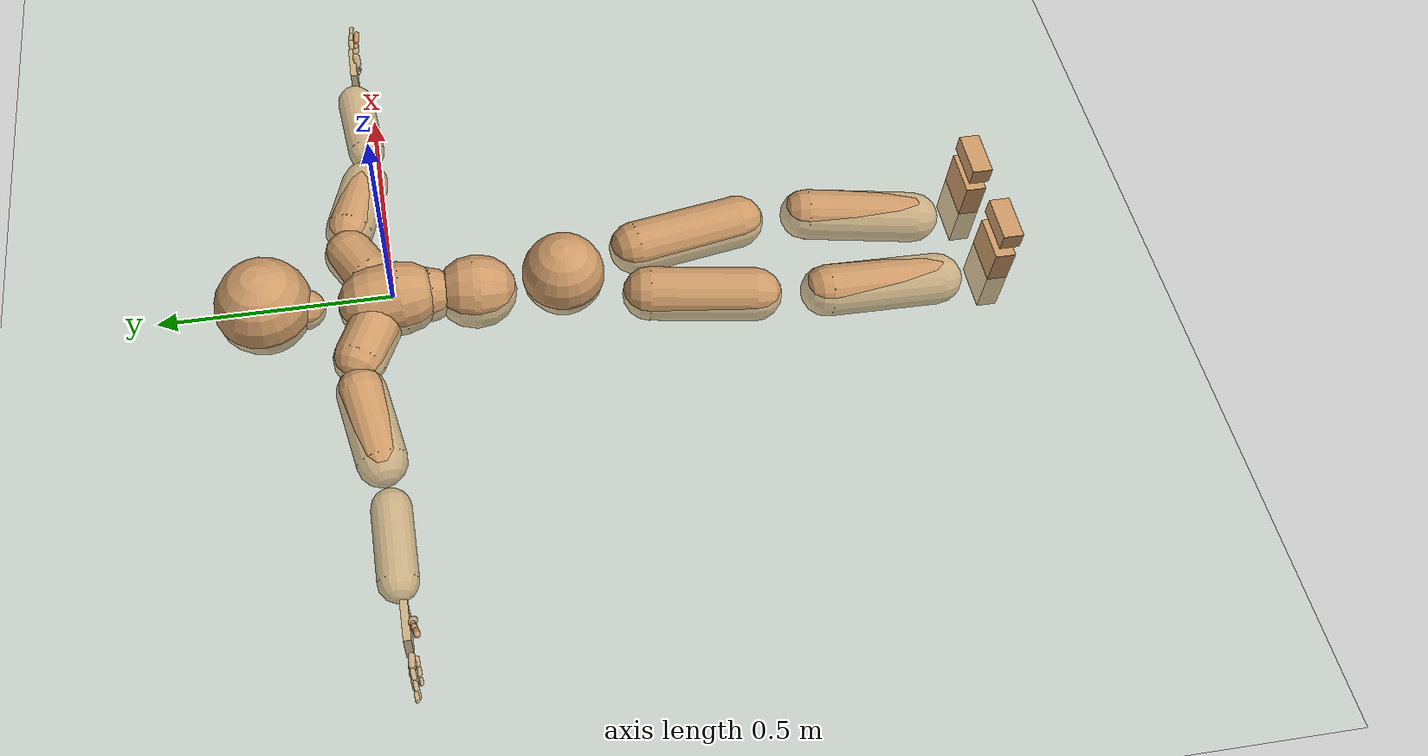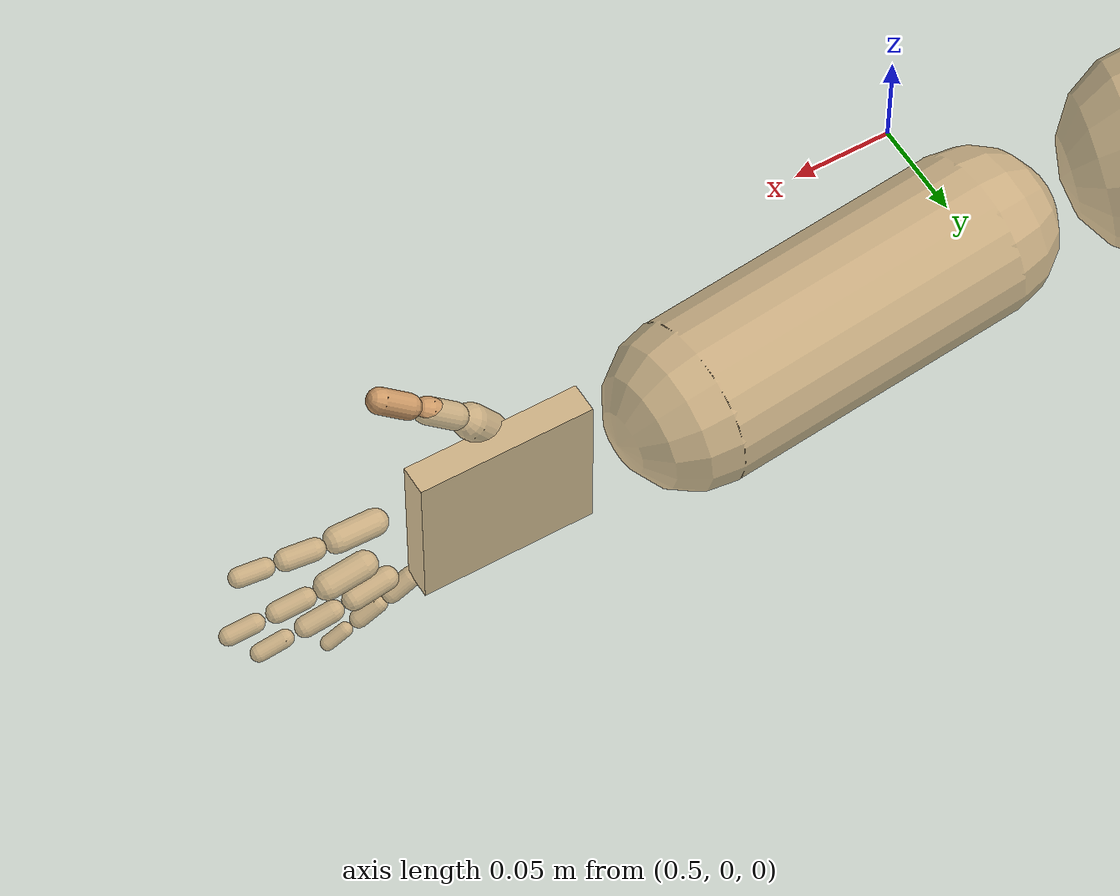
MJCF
<?xml version='1.0' encoding='utf-8'?>
<mujoco model="smplx_mapped_s1">
  <compiler coordinate="local" />
  <default>
    <joint damping="0.0" armature="0.01" stiffness="0.0" limited="true" />
    <geom conaffinity="1" condim="3" contype="7" margin="0.001" rgba="0.8 0.6 .4 1" />
  </default>
  <asset>
    <texture type="skybox" builtin="gradient" rgb1=".4 .5 .6" rgb2="0 0 0" width="100" height="100" />
    <texture builtin="flat" height="1278" mark="cross" markrgb="1 1 1" name="texgeom" random="0.01" rgb1="0.8 0.6 0.4" rgb2="0.8 0.6 0.4" type="cube" width="127" />
    <texture builtin="checker" height="100" name="texplane" rgb1="0 0 0" rgb2="0.8 0.8 0.8" type="2d" width="100" />
    <material name="MatPlane" reflectance="0.5" shininess="1" specular="1" texrepeat="60 60" texture="texplane" />
    <material name="geom" texture="texgeom" texuniform="true" />
  </asset>
  <worldbody>
    <light cutoff="100" diffuse="1 1 1" dir="-0 0 -1.3" directional="true" exponent="1" pos="0 0 1.3" specular=".1 .1 .1" />
    <geom conaffinity="1" condim="3" name="floor" pos="0 0 0" rgba="0.8 0.9 0.8 1" size="100 100 .2" type="plane" material="MatPlane" />
    <body name="Pelvis" pos="0.0009 -0.3704 0.0066">
      <freejoint name="Pelvis" />
      <geom type="sphere" contype="1" conaffinity="1" density="4629.6296296296305" size="0.09" pos="0.0000 0.0000 0.0000" name="Pelvis" />
      <body name="L_Hip" pos="0.0522 -0.0938 -0.0270">
        <joint name="L_Hip_x" type="hinge" pos="0 0 0" axis="1 0 0" stiffness="800" damping="80" armature="0.02" range="-150.00 150.00" />
        <joint name="L_Hip_y" type="hinge" pos="0 0 0" axis="0 1 0" stiffness="800" damping="80" armature="0.02" range="-150.00 150.00" />
        <joint name="L_Hip_z" type="hinge" pos="0 0 0" axis="0 0 1" stiffness="800" damping="80" armature="0.02" range="-150.00 150.00" />
        <geom type="capsule" contype="1" conaffinity="1" density="2040.816327" fromto="0.0134 -0.0789 -0.0012 0.0535 -0.3156 -0.0047" size="0.059" />
        <body name="L_Knee" pos="0.0669 -0.3944 -0.0058">
          <joint name="L_Knee_x" type="hinge" pos="0 0 0" axis="1 0 0" stiffness="800" damping="80" armature="0.02" range="-150.00 150.00" />
          <joint name="L_Knee_y" type="hinge" pos="0 0 0" axis="0 1 0" stiffness="800" damping="80" armature="0.02" range="-150.00 150.00" />
          <joint name="L_Knee_z" type="hinge" pos="0 0 0" axis="0 0 1" stiffness="800" damping="80" armature="0.02" range="-150.00 150.00" />
          <geom type="capsule" contype="1" conaffinity="1" density="1234.567901" fromto="-0.0089 -0.0820 -0.0079 -0.0356 -0.3279 -0.0317" size="0.0564" />
          <body name="L_Ankle" pos="-0.0446 -0.4099 -0.0396">
            <joint name="L_Ankle_x" type="hinge" pos="0 0 0" axis="1 0 0" stiffness="800" damping="80" armature="0.02" range="-150.00 150.00" />
            <joint name="L_Ankle_y" type="hinge" pos="0 0 0" axis="0 1 0" stiffness="800" damping="80" armature="0.02" range="-150.00 150.00" />
            <joint name="L_Ankle_z" type="hinge" pos="0 0 0" axis="0 0 1" stiffness="800" damping="80" armature="0.02" range="-150.00 150.00" />
            <geom type="box" contype="1" conaffinity="1" density="1000" pos="0.0115 -0.0234 0.0566" size="0.0502 0.0216 0.0909" quat="1.0000 0.0000 0.0000 0.0000" />
            <body name="L_Toe" pos="0 0 0.1326">
              <joint name="L_Toe_x" type="hinge" pos="0 0 0" axis="1 0 0" stiffness="500" damping="50" armature="0.02" range="-150.00 150.00" />
              <joint name="L_Toe_y" type="hinge" pos="0 0 0" axis="0 1 0" stiffness="500" damping="50" armature="0.02" range="-150.00 150.00" />
              <joint name="L_Toe_z" type="hinge" pos="0 0 0" axis="0 0 1" stiffness="500" damping="50" armature="0.02" range="-150.00 150.00" />
              <geom type="box" contype="1" conaffinity="1" density="1000" pos="0.0115 -0.0234 0.0576" size="0.0502 0.0216 0.0194" quat="1.0000 0.0000 0.0000 0.0000" />
            </body>
          </body>
        </body>
      </body>
      <body name="R_Hip" pos="-0.0536 -0.1041 -0.0208">
        <joint name="R_Hip_x" type="hinge" pos="0 0 0" axis="1 0 0" stiffness="800" damping="80" armature="0.02" range="-150.00 150.00" />
        <joint name="R_Hip_y" type="hinge" pos="0 0 0" axis="0 1 0" stiffness="800" damping="80" armature="0.02" range="-150.00 150.00" />
        <joint name="R_Hip_z" type="hinge" pos="0 0 0" axis="0 0 1" stiffness="800" damping="80" armature="0.02" range="-150.00 150.00" />
        <geom type="capsule" contype="1" conaffinity="1" density="2040.816327" fromto="-0.0102 -0.0755 -0.0026 -0.0408 -0.3022 -0.0104" size="0.0588" />
        <body name="R_Knee" pos="-0.0511 -0.3777 -0.0131">
          <joint name="R_Knee_x" type="hinge" pos="0 0 0" axis="1 0 0" stiffness="800" damping="80" armature="0.02" range="-150.00 150.00" />
          <joint name="R_Knee_y" type="hinge" pos="0 0 0" axis="0 1 0" stiffness="800" damping="80" armature="0.02" range="-150.00 150.00" />
          <joint name="R_Knee_z" type="hinge" pos="0 0 0" axis="0 0 1" stiffness="800" damping="80" armature="0.02" range="-150.00 150.00" />
          <geom type="capsule" contype="1" conaffinity="1" density="1234.567901" fromto="0.0035 -0.0847 -0.0077 0.0140 -0.3386 -0.0307" size="0.0564" />
          <body name="R_Ankle" pos="0.0175 -0.4233 -0.0383">
            <joint name="R_Ankle_x" type="hinge" pos="0 0 0" axis="1 0 0" stiffness="800" damping="80" armature="0.02" range="-150.00 150.00" />
            <joint name="R_Ankle_y" type="hinge" pos="0 0 0" axis="0 1 0" stiffness="800" damping="80" armature="0.02" range="-150.00 150.00" />
            <joint name="R_Ankle_z" type="hinge" pos="0 0 0" axis="0 0 1" stiffness="800" damping="80" armature="0.02" range="-150.00 150.00" />
            <geom type="box" contype="1" conaffinity="1" density="1000" pos="-0.0091 -0.0250 0.0535" size="0.0502 0.0216 0.0909" quat="1.0000 0.0000 0.0000 0.0000" />
            <body name="R_Toe" pos="0 0 0.1391">
              <joint name="R_Toe_x" type="hinge" pos="0 0 0" axis="1 0 0" stiffness="500" damping="50" armature="0.02" range="-150.00 150.00" />
              <joint name="R_Toe_y" type="hinge" pos="0 0 0" axis="0 1 0" stiffness="500" damping="50" armature="0.02" range="-150.00 150.00" />
              <joint name="R_Toe_z" type="hinge" pos="0 0 0" axis="0 0 1" stiffness="500" damping="50" armature="0.02" range="-150.00 150.00" />
              <geom type="box" contype="1" conaffinity="1" density="1000" pos="-0.0091 -0.0250 0.0545" size="0.0502 0.0216 0.0194" quat="1.0000 0.0000 0.0000 0.0000" />
            </body>
          </body>
        </body>
      </body>
      <body name="Torso" pos="-0.0016 0.1116 -0.0330">
        <joint name="Torso_x" type="hinge" pos="0 0 0" axis="1 0 0" stiffness="1000" damping="100" armature="0.02" range="-150.00 150.00" />
        <joint name="Torso_y" type="hinge" pos="0 0 0" axis="0 1 0" stiffness="1000" damping="100" armature="0.02" range="-150.00 150.00" />
        <joint name="Torso_z" type="hinge" pos="0 0 0" axis="0 0 1" stiffness="1000" damping="100" armature="0.02" range="-150.00 150.00" />
        <geom type="capsule" contype="1" conaffinity="1" density="1100" fromto="0.0037 0.0703 0.0019 0.0045 0.0859 0.0024" size="0.08" />
        <body name="Spine" pos="0.0083 0.1562 0.0043">
          <joint name="Spine_x" type="hinge" pos="0 0 0" axis="1 0 0" stiffness="1000" damping="100" armature="0.02" range="-150.00 150.00" />
          <joint name="Spine_y" type="hinge" pos="0 0 0" axis="0 1 0" stiffness="1000" damping="100" armature="0.02" range="-150.00 150.00" />
          <joint name="Spine_z" type="hinge" pos="0 0 0" axis="0 0 1" stiffness="1000" damping="100" armature="0.02" range="-150.00 150.00" />
          <geom type="capsule" contype="1" conaffinity="1" density="1100" fromto="-0.0035 0.0266 0.0075 -0.0042 0.0325 0.0091" size="0.06" />
          <body name="Chest" pos="-0.0077 0.0590 0.0166">
            <joint name="Chest_x" type="hinge" pos="0 0 0" axis="1 0 0" stiffness="1000" damping="100" armature="0.02" range="-150.00 150.00" />
            <joint name="Chest_y" type="hinge" pos="0 0 0" axis="0 1 0" stiffness="1000" damping="100" armature="0.02" range="-150.00 150.00" />
            <joint name="Chest_z" type="hinge" pos="0 0 0" axis="0 0 1" stiffness="1000" damping="100" armature="0.02" range="-150.00 150.00" />
            <geom type="capsule" contype="1" conaffinity="1" density="1100" fromto="-0.0006 0.0208 -0.0019 -0.0022 0.0832 -0.0075" size="0.08" />
            <body name="Neck" pos="-0.0074 0.1617 -0.0186">
              <joint name="Neck_x" type="hinge" pos="0 0 0" axis="1 0 0" stiffness="500" damping="50" armature="0.02" range="-150.00 150.00" />
              <joint name="Neck_y" type="hinge" pos="0 0 0" axis="0 1 0" stiffness="500" damping="50" armature="0.02" range="-150.00 150.00" />
              <joint name="Neck_z" type="hinge" pos="0 0 0" axis="0 0 1" stiffness="500" damping="50" armature="0.02" range="-150.00 150.00" />
              <geom type="capsule" contype="1" conaffinity="1" density="1000" fromto="0.0094 0.0705 0.0128 0.0115 0.0861 0.0156" size="0.0437" />
              <body name="Head" pos="0.0210 0.1566 0.0285">
                <joint name="Head_x" type="hinge" pos="0 0 0" axis="1 0 0" stiffness="500" damping="50" armature="0.02" range="-150.00 150.00" />
                <joint name="Head_y" type="hinge" pos="0 0 0" axis="0 1 0" stiffness="500" damping="50" armature="0.02" range="-150.00 150.00" />
                <joint name="Head_z" type="hinge" pos="0 0 0" axis="0 0 1" stiffness="500" damping="50" armature="0.02" range="-150.00 150.00" />
                <geom type="sphere" contype="1" conaffinity="1" density="1000" size="0.1054" pos="0.0000 0.0000 0.0000" name="Head" />
              </body>
            </body>
            <body name="L_Thorax" pos="0.0390 0.0749 -0.0026">
              <joint name="L_Thorax_x" type="hinge" pos="0 0 0" axis="1 0 0" stiffness="500" damping="50" armature="0.02" range="-150.00 150.00" />
              <joint name="L_Thorax_y" type="hinge" pos="0 0 0" axis="0 1 0" stiffness="500" damping="50" armature="0.02" range="-150.00 150.00" />
              <joint name="L_Thorax_z" type="hinge" pos="0 0 0" axis="0 0 1" stiffness="500" damping="50" armature="0.02" range="-150.00 150.00" />
              <geom type="capsule" contype="1" conaffinity="1" density="1000" fromto="0.0255 0.0132 -0.0038 0.1018 0.0527 -0.0151" size="0.0564" />
              <body name="L_Shoulder" pos="0.1273 0.0658 -0.0189">
                <joint name="L_Shoulder_x" type="hinge" pos="0 0 0" axis="1 0 0" stiffness="500" damping="50" armature="0.02" range="-150.00 150.00" />
                <joint name="L_Shoulder_y" type="hinge" pos="0 0 0" axis="0 1 0" stiffness="500" damping="50" armature="0.02" range="-150.00 150.00" />
                <joint name="L_Shoulder_z" type="hinge" pos="0 0 0" axis="0 0 1" stiffness="500" damping="50" armature="0.02" range="-150.00 150.00" />
                <geom type="capsule" contype="1" conaffinity="1" density="1000" fromto="0.0498 -0.0147 -0.0075 0.1992 -0.0590 -0.0300" size="0.0533" />
                <body name="L_Elbow" pos="0.2490 -0.0737 -0.0375">
                  <joint name="L_Elbow_x" type="hinge" pos="0 0 0" axis="1 0 0" stiffness="500" damping="50" armature="0.02" range="-150.00 150.00" />
                  <joint name="L_Elbow_y" type="hinge" pos="0 0 0" axis="0 1 0" stiffness="500" damping="50" armature="0.02" range="-150.00 150.00" />
                  <joint name="L_Elbow_z" type="hinge" pos="0 0 0" axis="0 0 1" stiffness="500" damping="50" armature="0.02" range="-150.00 150.00" />
                  <geom type="capsule" contype="1" conaffinity="1" density="1000" fromto="0.0536 0.0047 -0.0008 0.2145 0.0188 -0.0031" size="0.0418" />
                  <body name="L_Wrist" pos="0.2681 0.0235 -0.0039">
                    <joint name="L_Wrist_x" type="hinge" pos="0 0 0" axis="1 0 0" stiffness="300" damping="30" armature="0.02" range="-150.00 150.00" />
                    <joint name="L_Wrist_y" type="hinge" pos="0 0 0" axis="0 1 0" stiffness="300" damping="30" armature="0.02" range="-150.00 150.00" />
                    <joint name="L_Wrist_z" type="hinge" pos="0 0 0" axis="0 0 1" stiffness="300" damping="30" armature="0.02" range="-150.00 150.00" />
                    <geom type="box" contype="1" conaffinity="1" density="1000" pos="0.0456 -0.0084 -0.0022" size="0.0444 0.0076 0.0414" quat="1.0000 0.0000 0.0000 0.0000" />
                    <body name="L_Index1" pos="0.1029 -0.0095 0.0194">
                      <joint name="L_Index1_x" type="hinge" pos="0 0 0" axis="1 0 0" stiffness="100" damping="10" armature="0.02" range="-5.6250 5.6250" />
                      <joint name="L_Index1_y" type="hinge" pos="0 0 0" axis="0 1 0" stiffness="100" damping="10" armature="0.02" range="-5.6250 5.6250" />
                      <joint name="L_Index1_z" type="hinge" pos="0 0 0" axis="0 0 1" stiffness="100" damping="10" armature="0.02" range="-55.6250 55.6250" />
                      <geom type="capsule" contype="1" conaffinity="1" density="1000" fromto="0.0066 0.0003 0.0007 0.0263 0.0011 0.0028" size="0.0065" />
                      <body name="L_Index2" pos="0.0328 0.0014 0.0034">
                        <joint name="L_Index2_x" type="hinge" pos="0 0 0" axis="1 0 0" stiffness="100" damping="10" armature="0.02" range="-5.6250 5.6250" />
                        <joint name="L_Index2_y" type="hinge" pos="0 0 0" axis="0 1 0" stiffness="100" damping="10" armature="0.02" range="-5.6250 5.6250" />
                        <joint name="L_Index2_z" type="hinge" pos="0 0 0" axis="0 0 1" stiffness="100" damping="10" armature="0.02" range="-55.6250 55.6250" />
                        <geom type="capsule" contype="1" conaffinity="1" density="1000" fromto="0.0046 -0.0005 -0.0001 0.0185 -0.0022 -0.0002" size="0.0053" />
                        <body name="L_Index3" pos="0.0231 -0.0027 -0.0003">
                          <joint name="L_Index3_x" type="hinge" pos="0 0 0" axis="1 0 0" stiffness="100" damping="10" armature="0.02" range="-5.6250 5.6250" />
                          <joint name="L_Index3_y" type="hinge" pos="0 0 0" axis="0 1 0" stiffness="100" damping="10" armature="0.02" range="-5.6250 5.6250" />
                          <joint name="L_Index3_z" type="hinge" pos="0 0 0" axis="0 0 1" stiffness="100" damping="10" armature="0.02" range="-90.0000 5.6250" />
                          <geom type="capsule" contype="1" conaffinity="1" density="1000" fromto="0.0052 -0.0006 -0.0001 0.0179 -0.0021 -0.0002" size="0.0047" />
                        </body>
                      </body>
                    </body>
                    <body name="L_Middle1" pos="0.1109 -0.0069 -0.0042">
                      <joint name="L_Middle1_x" type="hinge" pos="0 0 0" axis="1 0 0" stiffness="100" damping="10" armature="0.02" range="-5.6250 5.6250" />
                      <joint name="L_Middle1_y" type="hinge" pos="0 0 0" axis="0 1 0" stiffness="100" damping="10" armature="0.02" range="-5.6250 5.6250" />
                      <joint name="L_Middle1_z" type="hinge" pos="0 0 0" axis="0 0 1" stiffness="100" damping="10" armature="0.02" range="-55.6250 55.6250" />
                      <geom type="capsule" contype="1" conaffinity="1" density="1000" fromto="0.0063 0.0001 -0.0008 0.0251 0.0002 -0.0034" size="0.0067" />
                      <body name="L_Middle2" pos="0.0314 0.0003 -0.0042">
                        <joint name="L_Middle2_x" type="hinge" pos="0 0 0" axis="1 0 0" stiffness="100" damping="10" armature="0.02" range="-5.6250 5.6250" />
                        <joint name="L_Middle2_y" type="hinge" pos="0 0 0" axis="0 1 0" stiffness="100" damping="10" armature="0.02" range="-5.6250 5.6250" />
                        <joint name="L_Middle2_z" type="hinge" pos="0 0 0" axis="0 0 1" stiffness="100" damping="10" armature="0.02" range="-55.6250 55.6250" />
                        <geom type="capsule" contype="1" conaffinity="1" density="1000" fromto="0.0048 -0.0005 -0.0009 0.0192 -0.0019 -0.0035" size="0.0050" />
                        <body name="L_Middle3" pos="0.0240 -0.0024 -0.0044">
                          <joint name="L_Middle3_x" type="hinge" pos="0 0 0" axis="1 0 0" stiffness="100" damping="10" armature="0.02" range="-5.6250 5.6250" />
                          <joint name="L_Middle3_y" type="hinge" pos="0 0 0" axis="0 1 0" stiffness="100" damping="10" armature="0.02" range="-5.6250 5.6250" />
                          <joint name="L_Middle3_z" type="hinge" pos="0 0 0" axis="0 0 1" stiffness="100" damping="10" armature="0.02" range="-90.0000 5.6250" />
                          <geom type="capsule" contype="1" conaffinity="1" density="1000" fromto="0.0054 -0.0005 -0.0010 0.0186 -0.0019 -0.0034" size="0.0045" />
                        </body>
                      </body>
                    </body>
                    <body name="L_Pinky1" pos="0.0858 -0.0150 -0.0448">
                      <joint name="L_Pinky1_x" type="hinge" pos="0 0 0" axis="1 0 0" stiffness="100" damping="10" armature="0.02" range="-5.6250 5.6250" />
                      <joint name="L_Pinky1_y" type="hinge" pos="0 0 0" axis="0 1 0" stiffness="100" damping="10" armature="0.02" range="-5.6250 5.6250" />
                      <joint name="L_Pinky1_z" type="hinge" pos="0 0 0" axis="0 0 1" stiffness="100" damping="10" armature="0.02" range="-55.6250 55.6250" />
                      <geom type="capsule" contype="1" conaffinity="1" density="1000" fromto="0.0033 -0.0003 -0.0023 0.0133 -0.0013 -0.0093" size="0.0050" />
                      <body name="L_Pinky2" pos="0.0167 -0.0016 -0.0116">
                        <joint name="L_Pinky2_x" type="hinge" pos="0 0 0" axis="1 0 0" stiffness="100" damping="10" armature="0.02" range="-5.6250 5.6250" />
                        <joint name="L_Pinky2_y" type="hinge" pos="0 0 0" axis="0 1 0" stiffness="100" damping="10" armature="0.02" range="-5.6250 5.6250" />
                        <joint name="L_Pinky2_z" type="hinge" pos="0 0 0" axis="0 0 1" stiffness="100" damping="10" armature="0.02" range="-55.6250 55.6250" />
                        <geom type="capsule" contype="1" conaffinity="1" density="1000" fromto="0.0033 -0.0004 -0.0022 0.0131 -0.0015 -0.0088" size="0.0045" />
                        <body name="L_Pinky3" pos="0.0164 -0.0018 -0.0109">
                          <joint name="L_Pinky3_x" type="hinge" pos="0 0 0" axis="1 0 0" stiffness="100" damping="10" armature="0.02" range="-5.6250 5.6250" />
                          <joint name="L_Pinky3_y" type="hinge" pos="0 0 0" axis="0 1 0" stiffness="100" damping="10" armature="0.02" range="-5.6250 5.6250" />
                          <joint name="L_Pinky3_z" type="hinge" pos="0 0 0" axis="0 0 1" stiffness="100" damping="10" armature="0.02" range="-90.0000 5.6250" />
                          <geom type="capsule" contype="1" conaffinity="1" density="1000" fromto="0.0038 -0.0004 -0.0025 0.0126 -0.0014 -0.0084" size="0.0036" />
                        </body>
                      </body>
                    </body>
                    <body name="L_Ring1" pos="0.0990 -0.0096 -0.0279">
                      <joint name="L_Ring1_x" type="hinge" pos="0 0 0" axis="1 0 0" stiffness="100" damping="10" armature="0.02" range="-5.6250 5.6250" />
                      <joint name="L_Ring1_y" type="hinge" pos="0 0 0" axis="0 1 0" stiffness="100" damping="10" armature="0.02" range="-5.6250 5.6250" />
                      <joint name="L_Ring1_z" type="hinge" pos="0 0 0" axis="0 0 1" stiffness="100" damping="10" armature="0.02" range="-55.6250 55.6250" />
                      <geom type="capsule" contype="1" conaffinity="1" density="1000" fromto="0.0058 0.0001 -0.0010 0.0231 0.0004 -0.0040" size="0.0057" />
                      <body name="L_Ring2" pos="0.0289 0.0006 -0.0049">
                        <joint name="L_Ring2_x" type="hinge" pos="0 0 0" axis="1 0 0" stiffness="100" damping="10" armature="0.02" range="-5.6250 5.6250" />
                        <joint name="L_Ring2_y" type="hinge" pos="0 0 0" axis="0 1 0" stiffness="100" damping="10" armature="0.02" range="-5.6250 5.6250" />
                        <joint name="L_Ring2_z" type="hinge" pos="0 0 0" axis="0 0 1" stiffness="100" damping="10" armature="0.02" range="-55.6250 55.6250" />
                        <geom type="capsule" contype="1" conaffinity="1" density="1000" fromto="0.0047 -0.0004 -0.0013 0.0188 -0.0017 -0.0053" size="0.0051" />
                        <body name="L_Ring3" pos="0.0235 -0.0022 -0.0067">
                          <joint name="L_Ring3_x" type="hinge" pos="0 0 0" axis="1 0 0" stiffness="100" damping="10" armature="0.02" range="-5.6250 5.6250" />
                          <joint name="L_Ring3_y" type="hinge" pos="0 0 0" axis="0 1 0" stiffness="100" damping="10" armature="0.02" range="-5.6250 5.6250" />
                          <joint name="L_Ring3_z" type="hinge" pos="0 0 0" axis="0 0 1" stiffness="100" damping="10" armature="0.02" range="-90.0000 5.6250" />
                          <geom type="capsule" contype="1" conaffinity="1" density="1000" fromto="0.0053 -0.0005 -0.0015 0.0182 -0.0017 -0.0052" size="0.0043" />
                        </body>
                      </body>
                    </body>
                    <body name="L_Thumb1" pos="0.0406 -0.0198 0.0258">
                      <joint name="L_Thumb1_x" type="hinge" pos="0 0 0" axis="1 0 0" stiffness="100" damping="10" armature="0.02" range="-55.6250 55.6250" />
                      <joint name="L_Thumb1_y" type="hinge" pos="0 0 0" axis="0 1 0" stiffness="100" damping="10" armature="0.02" range="-55.6250 55.6250" />
                      <joint name="L_Thumb1_z" type="hinge" pos="0 0 0" axis="0 0 1" stiffness="100" damping="10" armature="0.02" range="-55.6250 55.6250" />
                      <geom type="capsule" contype="1" conaffinity="1" density="1000" fromto="0.0034 0.0003 0.0053 0.0136 0.0012 0.0210" size="0.0086" />
                      <body name="L_Thumb2" pos="0.0169 0.0015 0.0263">
                        <joint name="L_Thumb2_x" type="hinge" pos="0 0 0" axis="1 0 0" stiffness="100" damping="10" armature="0.02" range="-5.6250 5.6250" />
                        <joint name="L_Thumb2_y" type="hinge" pos="0 0 0" axis="0 1 0" stiffness="100" damping="10" armature="0.02" range="-5.6250 5.6250" />
                        <joint name="L_Thumb2_z" type="hinge" pos="0 0 0" axis="0 0 1" stiffness="100" damping="10" armature="0.02" range="-5.6250 5.6250" />
                        <geom type="capsule" contype="1" conaffinity="1" density="1000" fromto="0.0042 -0.0009 0.0033 0.0167 -0.0036 0.0133" size="0.0065" />
                        <body name="L_Thumb3" pos="0.0208 -0.0046 0.0166">
                          <joint name="L_Thumb3_x" type="hinge" pos="0 0 0" axis="1 0 0" stiffness="100" damping="10" armature="0.02" range="-5.6250 5.6250" />
                          <joint name="L_Thumb3_y" type="hinge" pos="0 0 0" axis="0 1 0" stiffness="100" damping="10" armature="0.02" range="-5.6250 5.6250" />
                          <joint name="L_Thumb3_z" type="hinge" pos="0 0 0" axis="0 0 1" stiffness="100" damping="10" armature="0.02" range="-90.0000 5.6250" />
                          <geom type="capsule" contype="1" conaffinity="1" density="1000" fromto="0.0040 -0.0009 0.0032 0.0168 -0.0037 0.0134" size="0.0062" />
                        </body>
                      </body>
                    </body>
                  </body>
                </body>
              </body>
            </body>
            <body name="R_Thorax" pos="-0.0399 0.0755 -0.0069">
              <joint name="R_Thorax_x" type="hinge" pos="0 0 0" axis="1 0 0" stiffness="500" damping="50" armature="0.02" range="-150.00 150.00" />
              <joint name="R_Thorax_y" type="hinge" pos="0 0 0" axis="0 1 0" stiffness="500" damping="50" armature="0.02" range="-150.00 150.00" />
              <joint name="R_Thorax_z" type="hinge" pos="0 0 0" axis="0 0 1" stiffness="500" damping="50" armature="0.02" range="-150.00 150.00" />
              <geom type="capsule" contype="1" conaffinity="1" density="1000" fromto="-0.0238 0.0127 -0.0025 -0.0952 0.0508 -0.0101" size="0.0576" />
              <body name="R_Shoulder" pos="-0.1190 0.0635 -0.0126">
                <joint name="R_Shoulder_x" type="hinge" pos="0 0 0" axis="1 0 0" stiffness="500" damping="50" armature="0.02" range="-150.00 150.00" />
                <joint name="R_Shoulder_y" type="hinge" pos="0 0 0" axis="0 1 0" stiffness="500" damping="50" armature="0.02" range="-150.00 150.00" />
                <joint name="R_Shoulder_z" type="hinge" pos="0 0 0" axis="0 0 1" stiffness="500" damping="50" armature="0.02" range="-150.00 150.00" />
                <geom type="capsule" contype="1" conaffinity="1" density="1000" fromto="-0.0530 -0.0091 -0.0058 -0.2119 -0.0366 -0.0234" size="0.0538" />
                <body name="R_Elbow" pos="-0.2648 -0.0457 -0.0292">
                  <joint name="R_Elbow_x" type="hinge" pos="0 0 0" axis="1 0 0" stiffness="500" damping="50" armature="0.02" range="-150.00 150.00" />
                  <joint name="R_Elbow_y" type="hinge" pos="0 0 0" axis="0 1 0" stiffness="500" damping="50" armature="0.02" range="-150.00 150.00" />
                  <joint name="R_Elbow_z" type="hinge" pos="0 0 0" axis="0 0 1" stiffness="500" damping="50" armature="0.02" range="-150.00 150.00" />
                  <geom type="capsule" contype="1" conaffinity="1" density="1000" fromto="-0.0519 0.0001 -0.0026 -0.2077 0.0005 -0.0106" size="0.042" />
                  <body name="R_Wrist" pos="-0.2597 0.0007 -0.0132">
                    <joint name="R_Wrist_x" type="hinge" pos="0 0 0" axis="1 0 0" stiffness="300" damping="30" armature="0.02" range="-150.00 150.00" />
                    <joint name="R_Wrist_y" type="hinge" pos="0 0 0" axis="0 1 0" stiffness="300" damping="30" armature="0.02" range="-150.00 150.00" />
                    <joint name="R_Wrist_z" type="hinge" pos="0 0 0" axis="0 0 1" stiffness="300" damping="30" armature="0.02" range="-150.00 150.00" />
                    <geom type="box" contype="1" conaffinity="1" density="1000" pos="-0.0449 -0.0080 -0.0014" size="0.0416 0.0078 0.0414" quat="1.0000 0.0000 0.0000 0.0000" />
                    <body name="R_Index1" pos="-0.1025 -0.0128 0.0185">
                      <joint name="R_Index1_x" type="hinge" pos="0 0 0" axis="1 0 0" stiffness="100" damping="10" armature="0.02" range="-5.6250 5.6250" />
                      <joint name="R_Index1_y" type="hinge" pos="0 0 0" axis="0 1 0" stiffness="100" damping="10" armature="0.02" range="-5.6250 5.6250" />
                      <joint name="R_Index1_z" type="hinge" pos="0 0 0" axis="0 0 1" stiffness="100" damping="10" armature="0.02" range="-55.6250 55.6250" />
                      <geom type="capsule" contype="1" conaffinity="1" density="1000" fromto="-0.0066 0.0003 0.0007 -0.0263 0.0011 0.0028" size="0.0065" />
                      <body name="R_Index2" pos="-0.0328 0.0014 0.0034">
                        <joint name="R_Index2_x" type="hinge" pos="0 0 0" axis="1 0 0" stiffness="100" damping="10" armature="0.02" range="-5.6250 5.6250" />
                        <joint name="R_Index2_y" type="hinge" pos="0 0 0" axis="0 1 0" stiffness="100" damping="10" armature="0.02" range="-5.6250 5.6250" />
                        <joint name="R_Index2_z" type="hinge" pos="0 0 0" axis="0 0 1" stiffness="100" damping="10" armature="0.02" range="-55.6250 55.6250" />
                        <geom type="capsule" contype="1" conaffinity="1" density="1000" fromto="-0.0046 -0.0005 -0.0001 -0.0185 -0.0022 -0.0002" size="0.0053" />
                        <body name="R_Index3" pos="-0.0231 -0.0027 -0.0003">
                          <joint name="R_Index3_x" type="hinge" pos="0 0 0" axis="1 0 0" stiffness="100" damping="10" armature="0.02" range="-5.6250 5.6250" />
                          <joint name="R_Index3_y" type="hinge" pos="0 0 0" axis="0 1 0" stiffness="100" damping="10" armature="0.02" range="-5.6250 5.6250" />
                          <joint name="R_Index3_z" type="hinge" pos="0 0 0" axis="0 0 1" stiffness="100" damping="10" armature="0.02" range="-5.6250 90.0000" />
                          <geom type="capsule" contype="1" conaffinity="1" density="1000" fromto="-0.0056 -0.0007 -0.0001 -0.0175 -0.0020 -0.0002" size="0.0048" />
                        </body>
                      </body>
                    </body>
                    <body name="R_Middle1" pos="-0.1106 -0.0102 -0.0052">
                      <joint name="R_Middle1_x" type="hinge" pos="0 0 0" axis="1 0 0" stiffness="100" damping="10" armature="0.02" range="-5.6250 5.6250" />
                      <joint name="R_Middle1_y" type="hinge" pos="0 0 0" axis="0 1 0" stiffness="100" damping="10" armature="0.02" range="-5.6250 5.6250" />
                      <joint name="R_Middle1_z" type="hinge" pos="0 0 0" axis="0 0 1" stiffness="100" damping="10" armature="0.02" range="-55.6250 55.6250" />
                      <geom type="capsule" contype="1" conaffinity="1" density="1000" fromto="-0.0063 0.0001 -0.0008 -0.0251 0.0002 -0.0034" size="0.0067" />
                      <body name="R_Middle2" pos="-0.0314 0.0003 -0.0042">
                        <joint name="R_Middle2_x" type="hinge" pos="0 0 0" axis="1 0 0" stiffness="100" damping="10" armature="0.02" range="-5.6250 5.6250" />
                        <joint name="R_Middle2_y" type="hinge" pos="0 0 0" axis="0 1 0" stiffness="100" damping="10" armature="0.02" range="-5.6250 5.6250" />
                        <joint name="R_Middle2_z" type="hinge" pos="0 0 0" axis="0 0 1" stiffness="100" damping="10" armature="0.02" range="-55.6250 55.6250" />
                        <geom type="capsule" contype="1" conaffinity="1" density="1000" fromto="-0.0048 -0.0005 -0.0009 -0.0192 -0.0019 -0.0035" size="0.0050" />
                        <body name="R_Middle3" pos="-0.0240 -0.0024 -0.0044">
                          <joint name="R_Middle3_x" type="hinge" pos="0 0 0" axis="1 0 0" stiffness="100" damping="10" armature="0.02" range="-5.6250 5.6250" />
                          <joint name="R_Middle3_y" type="hinge" pos="0 0 0" axis="0 1 0" stiffness="100" damping="10" armature="0.02" range="-5.6250 5.6250" />
                          <joint name="R_Middle3_z" type="hinge" pos="0 0 0" axis="0 0 1" stiffness="100" damping="10" armature="0.02" range="-5.6250 90.0000" />
                          <geom type="capsule" contype="1" conaffinity="1" density="1000" fromto="-0.0057 -0.0006 -0.0010 -0.0183 -0.0018 -0.0033" size="0.0045" />
                        </body>
                      </body>
                    </body>
                    <body name="R_Pinky1" pos="-0.0854 -0.0183 -0.0458">
                      <joint name="R_Pinky1_x" type="hinge" pos="0 0 0" axis="1 0 0" stiffness="100" damping="10" armature="0.02" range="-5.6250 5.6250" />
                      <joint name="R_Pinky1_y" type="hinge" pos="0 0 0" axis="0 1 0" stiffness="100" damping="10" armature="0.02" range="-5.6250 5.6250" />
                      <joint name="R_Pinky1_z" type="hinge" pos="0 0 0" axis="0 0 1" stiffness="100" damping="10" armature="0.02" range="-55.6250 55.6250" />
                      <geom type="capsule" contype="1" conaffinity="1" density="1000" fromto="-0.0033 -0.0003 -0.0023 -0.0133 -0.0013 -0.0093" size="0.0050" />
                      <body name="R_Pinky2" pos="-0.0167 -0.0016 -0.0116">
                        <joint name="R_Pinky2_x" type="hinge" pos="0 0 0" axis="1 0 0" stiffness="100" damping="10" armature="0.02" range="-5.6250 5.6250" />
                        <joint name="R_Pinky2_y" type="hinge" pos="0 0 0" axis="0 1 0" stiffness="100" damping="10" armature="0.02" range="-5.6250 5.6250" />
                        <joint name="R_Pinky2_z" type="hinge" pos="0 0 0" axis="0 0 1" stiffness="100" damping="10" armature="0.02" range="-55.6250 55.6250" />
                        <geom type="capsule" contype="1" conaffinity="1" density="1000" fromto="-0.0033 -0.0004 -0.0022 -0.0131 -0.0015 -0.0088" size="0.0045" />
                        <body name="R_Pinky3" pos="-0.0164 -0.0018 -0.0109">
                          <joint name="R_Pinky3_x" type="hinge" pos="0 0 0" axis="1 0 0" stiffness="100" damping="10" armature="0.02" range="-5.6250 5.6250" />
                          <joint name="R_Pinky3_y" type="hinge" pos="0 0 0" axis="0 1 0" stiffness="100" damping="10" armature="0.02" range="-5.6250 5.6250" />
                          <joint name="R_Pinky3_z" type="hinge" pos="0 0 0" axis="0 0 1" stiffness="100" damping="10" armature="0.02" range="-5.6250 90.0000" />
                          <geom type="capsule" contype="1" conaffinity="1" density="1000" fromto="-0.0040 -0.0004 -0.0027 -0.0124 -0.0014 -0.0083" size="0.0036" />
                        </body>
                      </body>
                    </body>
                    <body name="R_Ring1" pos="-0.0987 -0.0130 -0.0289">
                      <joint name="R_Ring1_x" type="hinge" pos="0 0 0" axis="1 0 0" stiffness="100" damping="10" armature="0.02" range="-5.6250 5.6250" />
                      <joint name="R_Ring1_y" type="hinge" pos="0 0 0" axis="0 1 0" stiffness="100" damping="10" armature="0.02" range="-5.6250 5.6250" />
                      <joint name="R_Ring1_z" type="hinge" pos="0 0 0" axis="0 0 1" stiffness="100" damping="10" armature="0.02" range="-55.6250 55.6250" />
                      <geom type="capsule" contype="1" conaffinity="1" density="1000" fromto="-0.0058 0.0001 -0.0010 -0.0231 0.0004 -0.0040" size="0.0057" />
                      <body name="R_Ring2" pos="-0.0289 0.0006 -0.0049">
                        <joint name="R_Ring2_x" type="hinge" pos="0 0 0" axis="1 0 0" stiffness="100" damping="10" armature="0.02" range="-5.6250 5.6250" />
                        <joint name="R_Ring2_y" type="hinge" pos="0 0 0" axis="0 1 0" stiffness="100" damping="10" armature="0.02" range="-5.6250 5.6250" />
                        <joint name="R_Ring2_z" type="hinge" pos="0 0 0" axis="0 0 1" stiffness="100" damping="10" armature="0.02" range="-55.6250 55.6250" />
                        <geom type="capsule" contype="1" conaffinity="1" density="1000" fromto="-0.0047 -0.0004 -0.0013 -0.0188 -0.0017 -0.0053" size="0.0051" />
                        <body name="R_Ring3" pos="-0.0235 -0.0022 -0.0067">
                          <joint name="R_Ring3_x" type="hinge" pos="0 0 0" axis="1 0 0" stiffness="100" damping="10" armature="0.02" range="-5.6250 5.6250" />
                          <joint name="R_Ring3_y" type="hinge" pos="0 0 0" axis="0 1 0" stiffness="100" damping="10" armature="0.02" range="-5.6250 5.6250" />
                          <joint name="R_Ring3_z" type="hinge" pos="0 0 0" axis="0 0 1" stiffness="100" damping="10" armature="0.02" range="-5.6250 90.0000" />
                          <geom type="capsule" contype="1" conaffinity="1" density="1000" fromto="-0.0055 -0.0005 -0.0016 -0.0180 -0.0017 -0.0051" size="0.0043" />
                        </body>
                      </body>
                    </body>
                    <body name="R_Thumb1" pos="-0.0402 -0.0232 0.0248">
                      <joint name="R_Thumb1_x" type="hinge" pos="0 0 0" axis="1 0 0" stiffness="100" damping="10" armature="0.02" range="-55.6250 55.6250" />
                      <joint name="R_Thumb1_y" type="hinge" pos="0 0 0" axis="0 1 0" stiffness="100" damping="10" armature="0.02" range="-55.6250 55.6250" />
                      <joint name="R_Thumb1_z" type="hinge" pos="0 0 0" axis="0 0 1" stiffness="100" damping="10" armature="0.02" range="-55.6250 55.6250" />
                      <geom type="capsule" contype="1" conaffinity="1" density="1000" fromto="-0.0034 0.0003 0.0053 -0.0136 0.0012 0.0210" size="0.0086" />
                      <body name="R_Thumb2" pos="-0.0169 0.0016 0.0263">
                        <joint name="R_Thumb2_x" type="hinge" pos="0 0 0" axis="1 0 0" stiffness="100" damping="10" armature="0.02" range="-5.6250 5.6250" />
                        <joint name="R_Thumb2_y" type="hinge" pos="0 0 0" axis="0 1 0" stiffness="100" damping="10" armature="0.02" range="-5.6250 5.6250" />
                        <joint name="R_Thumb2_z" type="hinge" pos="0 0 0" axis="0 0 1" stiffness="100" damping="10" armature="0.02" range="-5.6250 5.6250" />
                        <geom type="capsule" contype="1" conaffinity="1" density="1000" fromto="-0.0042 -0.0009 0.0033 -0.0167 -0.0036 0.0133" size="0.0065" />
                        <body name="R_Thumb3" pos="-0.0208 -0.0046 0.0166">
                          <joint name="R_Thumb3_x" type="hinge" pos="0 0 0" axis="1 0 0" stiffness="100" damping="10" armature="0.02" range="-5.6250 5.6250" />
                          <joint name="R_Thumb3_y" type="hinge" pos="0 0 0" axis="0 1 0" stiffness="100" damping="10" armature="0.02" range="-5.6250 5.6250" />
                          <joint name="R_Thumb3_z" type="hinge" pos="0 0 0" axis="0 0 1" stiffness="100" damping="10" armature="0.02" range="-5.6250 90.0000" />
                          <geom type="capsule" contype="1" conaffinity="1" density="1000" fromto="-0.0048 -0.0011 0.0039 -0.0160 -0.0035 0.0127" size="0.0064" />
                        </body>
                      </body>
                    </body>
                  </body>
                </body>
              </body>
            </body>
          </body>
        </body>
      </body>
    </body>
  </worldbody>
  <actuator>
    <motor name="L_Hip_x" joint="L_Hip_x" gear="1" />
    <motor name="L_Hip_y" joint="L_Hip_y" gear="1" />
    <motor name="L_Hip_z" joint="L_Hip_z" gear="1" />
    <motor name="L_Knee_x" joint="L_Knee_x" gear="1" />
    <motor name="L_Knee_y" joint="L_Knee_y" gear="1" />
    <motor name="L_Knee_z" joint="L_Knee_z" gear="1" />
    <motor name="L_Ankle_x" joint="L_Ankle_x" gear="1" />
    <motor name="L_Ankle_y" joint="L_Ankle_y" gear="1" />
    <motor name="L_Ankle_z" joint="L_Ankle_z" gear="1" />
    <motor name="L_Toe_x" joint="L_Toe_x" gear="1" />
    <motor name="L_Toe_y" joint="L_Toe_y" gear="1" />
    <motor name="L_Toe_z" joint="L_Toe_z" gear="1" />
    <motor name="R_Hip_x" joint="R_Hip_x" gear="1" />
    <motor name="R_Hip_y" joint="R_Hip_y" gear="1" />
    <motor name="R_Hip_z" joint="R_Hip_z" gear="1" />
    <motor name="R_Knee_x" joint="R_Knee_x" gear="1" />
    <motor name="R_Knee_y" joint="R_Knee_y" gear="1" />
    <motor name="R_Knee_z" joint="R_Knee_z" gear="1" />
    <motor name="R_Ankle_x" joint="R_Ankle_x" gear="1" />
    <motor name="R_Ankle_y" joint="R_Ankle_y" gear="1" />
    <motor name="R_Ankle_z" joint="R_Ankle_z" gear="1" />
    <motor name="R_Toe_x" joint="R_Toe_x" gear="1" />
    <motor name="R_Toe_y" joint="R_Toe_y" gear="1" />
    <motor name="R_Toe_z" joint="R_Toe_z" gear="1" />
    <motor name="Torso_x" joint="Torso_x" gear="1" />
    <motor name="Torso_y" joint="Torso_y" gear="1" />
    <motor name="Torso_z" joint="Torso_z" gear="1" />
    <motor name="Spine_x" joint="Spine_x" gear="1" />
    <motor name="Spine_y" joint="Spine_y" gear="1" />
    <motor name="Spine_z" joint="Spine_z" gear="1" />
    <motor name="Chest_x" joint="Chest_x" gear="1" />
    <motor name="Chest_y" joint="Chest_y" gear="1" />
    <motor name="Chest_z" joint="Chest_z" gear="1" />
    <motor name="Neck_x" joint="Neck_x" gear="1" />
    <motor name="Neck_y" joint="Neck_y" gear="1" />
    <motor name="Neck_z" joint="Neck_z" gear="1" />
    <motor name="Head_x" joint="Head_x" gear="1" />
    <motor name="Head_y" joint="Head_y" gear="1" />
    <motor name="Head_z" joint="Head_z" gear="1" />
    <motor name="L_Thorax_x" joint="L_Thorax_x" gear="1" />
    <motor name="L_Thorax_y" joint="L_Thorax_y" gear="1" />
    <motor name="L_Thorax_z" joint="L_Thorax_z" gear="1" />
    <motor name="L_Shoulder_x" joint="L_Shoulder_x" gear="1" />
    <motor name="L_Shoulder_y" joint="L_Shoulder_y" gear="1" />
    <motor name="L_Shoulder_z" joint="L_Shoulder_z" gear="1" />
    <motor name="L_Elbow_x" joint="L_Elbow_x" gear="1" />
    <motor name="L_Elbow_y" joint="L_Elbow_y" gear="1" />
    <motor name="L_Elbow_z" joint="L_Elbow_z" gear="1" />
    <motor name="L_Wrist_x" joint="L_Wrist_x" gear="1" />
    <motor name="L_Wrist_y" joint="L_Wrist_y" gear="1" />
    <motor name="L_Wrist_z" joint="L_Wrist_z" gear="1" />
    <motor name="L_Index1_x" joint="L_Index1_x" gear="1" />
    <motor name="L_Index1_y" joint="L_Index1_y" gear="1" />
    <motor name="L_Index1_z" joint="L_Index1_z" gear="1" />
    <motor name="L_Index2_x" joint="L_Index2_x" gear="1" />
    <motor name="L_Index2_y" joint="L_Index2_y" gear="1" />
    <motor name="L_Index2_z" joint="L_Index2_z" gear="1" />
    <motor name="L_Index3_x" joint="L_Index3_x" gear="1" />
    <motor name="L_Index3_y" joint="L_Index3_y" gear="1" />
    <motor name="L_Index3_z" joint="L_Index3_z" gear="1" />
    <motor name="L_Middle1_x" joint="L_Middle1_x" gear="1" />
    <motor name="L_Middle1_y" joint="L_Middle1_y" gear="1" />
    <motor name="L_Middle1_z" joint="L_Middle1_z" gear="1" />
    <motor name="L_Middle2_x" joint="L_Middle2_x" gear="1" />
    <motor name="L_Middle2_y" joint="L_Middle2_y" gear="1" />
    <motor name="L_Middle2_z" joint="L_Middle2_z" gear="1" />
    <motor name="L_Middle3_x" joint="L_Middle3_x" gear="1" />
    <motor name="L_Middle3_y" joint="L_Middle3_y" gear="1" />
    <motor name="L_Middle3_z" joint="L_Middle3_z" gear="1" />
    <motor name="L_Pinky1_x" joint="L_Pinky1_x" gear="1" />
    <motor name="L_Pinky1_y" joint="L_Pinky1_y" gear="1" />
    <motor name="L_Pinky1_z" joint="L_Pinky1_z" gear="1" />
    <motor name="L_Pinky2_x" joint="L_Pinky2_x" gear="1" />
    <motor name="L_Pinky2_y" joint="L_Pinky2_y" gear="1" />
    <motor name="L_Pinky2_z" joint="L_Pinky2_z" gear="1" />
    <motor name="L_Pinky3_x" joint="L_Pinky3_x" gear="1" />
    <motor name="L_Pinky3_y" joint="L_Pinky3_y" gear="1" />
    <motor name="L_Pinky3_z" joint="L_Pinky3_z" gear="1" />
    <motor name="L_Ring1_x" joint="L_Ring1_x" gear="1" />
    <motor name="L_Ring1_y" joint="L_Ring1_y" gear="1" />
    <motor name="L_Ring1_z" joint="L_Ring1_z" gear="1" />
    <motor name="L_Ring2_x" joint="L_Ring2_x" gear="1" />
    <motor name="L_Ring2_y" joint="L_Ring2_y" gear="1" />
    <motor name="L_Ring2_z" joint="L_Ring2_z" gear="1" />
    <motor name="L_Ring3_x" joint="L_Ring3_x" gear="1" />
    <motor name="L_Ring3_y" joint="L_Ring3_y" gear="1" />
    <motor name="L_Ring3_z" joint="L_Ring3_z" gear="1" />
    <motor name="L_Thumb1_x" joint="L_Thumb1_x" gear="1" />
    <motor name="L_Thumb1_y" joint="L_Thumb1_y" gear="1" />
    <motor name="L_Thumb1_z" joint="L_Thumb1_z" gear="1" />
    <motor name="L_Thumb2_x" joint="L_Thumb2_x" gear="1" />
    <motor name="L_Thumb2_y" joint="L_Thumb2_y" gear="1" />
    <motor name="L_Thumb2_z" joint="L_Thumb2_z" gear="1" />
    <motor name="L_Thumb3_x" joint="L_Thumb3_x" gear="1" />
    <motor name="L_Thumb3_y" joint="L_Thumb3_y" gear="1" />
    <motor name="L_Thumb3_z" joint="L_Thumb3_z" gear="1" />
    <motor name="R_Thorax_x" joint="R_Thorax_x" gear="1" />
    <motor name="R_Thorax_y" joint="R_Thorax_y" gear="1" />
    <motor name="R_Thorax_z" joint="R_Thorax_z" gear="1" />
    <motor name="R_Shoulder_x" joint="R_Shoulder_x" gear="1" />
    <motor name="R_Shoulder_y" joint="R_Shoulder_y" gear="1" />
    <motor name="R_Shoulder_z" joint="R_Shoulder_z" gear="1" />
    <motor name="R_Elbow_x" joint="R_Elbow_x" gear="1" />
    <motor name="R_Elbow_y" joint="R_Elbow_y" gear="1" />
    <motor name="R_Elbow_z" joint="R_Elbow_z" gear="1" />
    <motor name="R_Wrist_x" joint="R_Wrist_x" gear="1" />
    <motor name="R_Wrist_y" joint="R_Wrist_y" gear="1" />
    <motor name="R_Wrist_z" joint="R_Wrist_z" gear="1" />
    <motor name="R_Index1_x" joint="R_Index1_x" gear="1" />
    <motor name="R_Index1_y" joint="R_Index1_y" gear="1" />
    <motor name="R_Index1_z" joint="R_Index1_z" gear="1" />
    <motor name="R_Index2_x" joint="R_Index2_x" gear="1" />
    <motor name="R_Index2_y" joint="R_Index2_y" gear="1" />
    <motor name="R_Index2_z" joint="R_Index2_z" gear="1" />
    <motor name="R_Index3_x" joint="R_Index3_x" gear="1" />
    <motor name="R_Index3_y" joint="R_Index3_y" gear="1" />
    <motor name="R_Index3_z" joint="R_Index3_z" gear="1" />
    <motor name="R_Middle1_x" joint="R_Middle1_x" gear="1" />
    <motor name="R_Middle1_y" joint="R_Middle1_y" gear="1" />
    <motor name="R_Middle1_z" joint="R_Middle1_z" gear="1" />
    <motor name="R_Middle2_x" joint="R_Middle2_x" gear="1" />
    <motor name="R_Middle2_y" joint="R_Middle2_y" gear="1" />
    <motor name="R_Middle2_z" joint="R_Middle2_z" gear="1" />
    <motor name="R_Middle3_x" joint="R_Middle3_x" gear="1" />
    <motor name="R_Middle3_y" joint="R_Middle3_y" gear="1" />
    <motor name="R_Middle3_z" joint="R_Middle3_z" gear="1" />
    <motor name="R_Pinky1_x" joint="R_Pinky1_x" gear="1" />
    <motor name="R_Pinky1_y" joint="R_Pinky1_y" gear="1" />
    <motor name="R_Pinky1_z" joint="R_Pinky1_z" gear="1" />
    <motor name="R_Pinky2_x" joint="R_Pinky2_x" gear="1" />
    <motor name="R_Pinky2_y" joint="R_Pinky2_y" gear="1" />
    <motor name="R_Pinky2_z" joint="R_Pinky2_z" gear="1" />
    <motor name="R_Pinky3_x" joint="R_Pinky3_x" gear="1" />
    <motor name="R_Pinky3_y" joint="R_Pinky3_y" gear="1" />
    <motor name="R_Pinky3_z" joint="R_Pinky3_z" gear="1" />
    <motor name="R_Ring1_x" joint="R_Ring1_x" gear="1" />
    <motor name="R_Ring1_y" joint="R_Ring1_y" gear="1" />
    <motor name="R_Ring1_z" joint="R_Ring1_z" gear="1" />
    <motor name="R_Ring2_x" joint="R_Ring2_x" gear="1" />
    <motor name="R_Ring2_y" joint="R_Ring2_y" gear="1" />
    <motor name="R_Ring2_z" joint="R_Ring2_z" gear="1" />
    <motor name="R_Ring3_x" joint="R_Ring3_x" gear="1" />
    <motor name="R_Ring3_y" joint="R_Ring3_y" gear="1" />
    <motor name="R_Ring3_z" joint="R_Ring3_z" gear="1" />
    <motor name="R_Thumb1_x" joint="R_Thumb1_x" gear="1" />
    <motor name="R_Thumb1_y" joint="R_Thumb1_y" gear="1" />
    <motor name="R_Thumb1_z" joint="R_Thumb1_z" gear="1" />
    <motor name="R_Thumb2_x" joint="R_Thumb2_x" gear="1" />
    <motor name="R_Thumb2_y" joint="R_Thumb2_y" gear="1" />
    <motor name="R_Thumb2_z" joint="R_Thumb2_z" gear="1" />
    <motor name="R_Thumb3_x" joint="R_Thumb3_x" gear="1" />
    <motor name="R_Thumb3_y" joint="R_Thumb3_y" gear="1" />
    <motor name="R_Thumb3_z" joint="R_Thumb3_z" gear="1" />
  </actuator>
  <contact />
  <sensor />
  <size njmax="700" nconmax="700" />
</mujoco>
